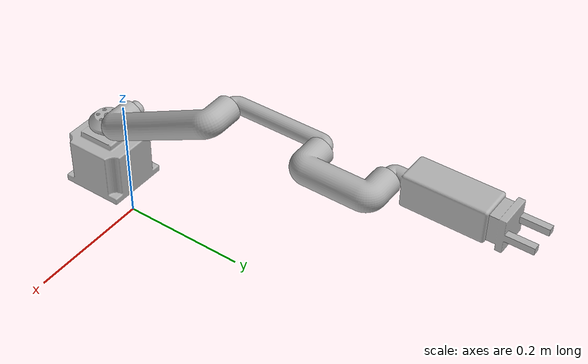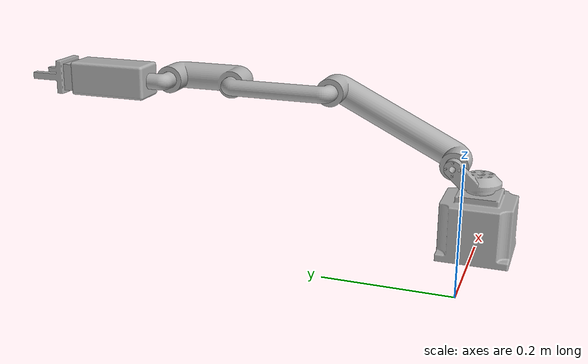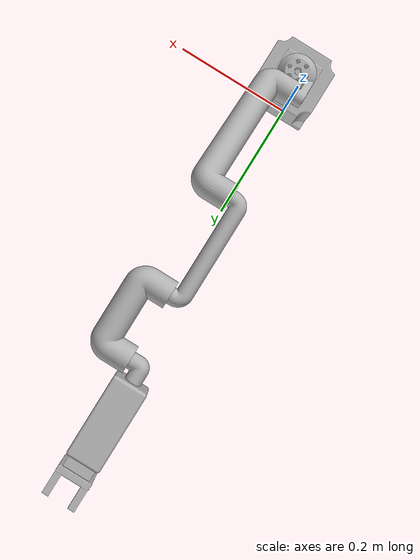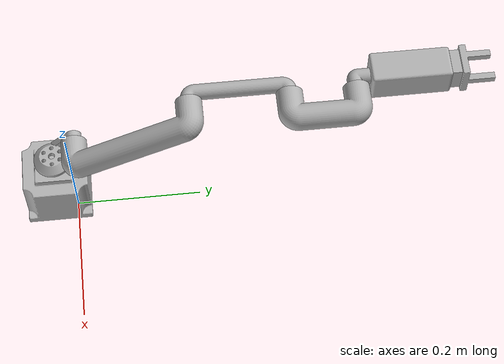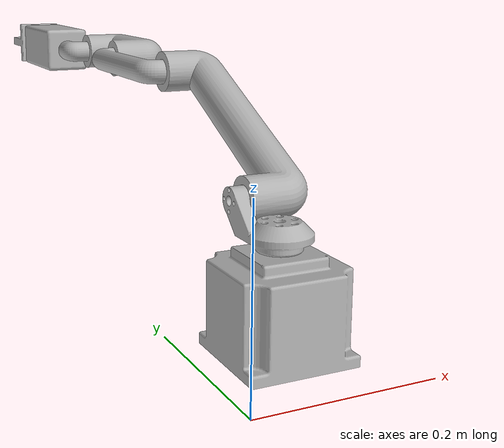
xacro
<?xml version="1.0" ?>
<robot name="Hexa" xmlns:xacro="http://www.ros.org/wiki/xacro">

<xacro:include filename="$(find Hexa_description)/urdf/materials.xacro" />
<xacro:include filename="$(find Hexa_description)/urdf/Hexa.trans" />
<xacro:include filename="$(find Hexa_description)/urdf/Hexa.gazebo" />
<link name="base_link">
  <inertial>
    <origin xyz="0.012186078410571176 -0.0224344536453961 0.11478353429233606" rpy="0 0 0"/>
    <mass value="5.2215512049750945"/>
    <inertia ixx="0.007305" iyy="0.007205" izz="0.008494" ixy="-0.0" iyz="0.0" ixz="-0.0"/>
  </inertial>
  <visual>
    <origin xyz="0 0 0" rpy="0 0 0"/>
    <geometry>
      <mesh filename="package://Hexa_description/meshes/base_link.stl" scale="0.001 0.001 0.001"/>
    </geometry>
    <material name="silver"/>
  </visual>
  <collision>
    <origin xyz="0 0 0" rpy="0 0 0"/>
    <geometry>
      <mesh filename="package://Hexa_description/meshes/base_link.stl" scale="0.001 0.001 0.001"/>
    </geometry>
  </collision>
</link>

<link name="Joint1_1">
  <inertial>
    <origin xyz="-0.017249498737064974 0.030459727623335396 -0.05028170355967204" rpy="0 0 0"/>
    <mass value="0.1462971408515163"/>
    <inertia ixx="6.4e-05" iyy="4.7e-05" izz="7.7e-05" ixy="1.5e-05" iyz="-1.7e-05" ixz="9e-06"/>
  </inertial>
  <visual>
    <origin xyz="-0.024372 0.044869 -0.228" rpy="0 0 0"/>
    <geometry>
      <mesh filename="package://Hexa_description/meshes/Joint1_1.stl" scale="0.001 0.001 0.001"/>
    </geometry>
    <material name="silver"/>
  </visual>
  <collision>
    <origin xyz="-0.024372 0.044869 -0.228" rpy="0 0 0"/>
    <geometry>
      <mesh filename="package://Hexa_description/meshes/Joint1_1.stl" scale="0.001 0.001 0.001"/>
    </geometry>
  </collision>
</link>

<link name="Joint2_1">
  <inertial>
    <origin xyz="0.038661884935205185 0.08964641623272433 0.04431136207566655" rpy="0 0 0"/>
    <mass value="0.5712992435269599"/>
    <inertia ixx="0.003173" iyy="0.000816" izz="0.002646" ixy="-0.0" iyz="-0.001197" ixz="0.0"/>
  </inertial>
  <visual>
    <origin xyz="0.004315 -0.013303 -0.196223" rpy="0 0 0"/>
    <geometry>
      <mesh filename="package://Hexa_description/meshes/Joint2_1.stl" scale="0.001 0.001 0.001"/>
    </geometry>
    <material name="silver"/>
  </visual>
  <collision>
    <origin xyz="0.004315 -0.013303 -0.196223" rpy="0 0 0"/>
    <geometry>
      <mesh filename="package://Hexa_description/meshes/Joint2_1.stl" scale="0.001 0.001 0.001"/>
    </geometry>
  </collision>
</link>

<link name="Joint3_1">
  <inertial>
    <origin xyz="0.02346583061234643 0.25889013648310066 -0.14411862858860852" rpy="0 0 0"/>
    <mass value="0.08484280964737087"/>
    <inertia ixx="0.00028" iyy="2.3e-05" izz="0.000293" ixy="0.0" iyz="0.0" ixz="0.0"/>
  </inertial>
  <visual>
    <origin xyz="0.033285 -0.008706 -0.428964" rpy="0 0 0"/>
    <geometry>
      <mesh filename="package://Hexa_description/meshes/Joint3_1.stl" scale="0.001 0.001 0.001"/>
    </geometry>
    <material name="silver"/>
  </visual>
  <collision>
    <origin xyz="0.033285 -0.008706 -0.428964" rpy="0 0 0"/>
    <geometry>
      <mesh filename="package://Hexa_description/meshes/Joint3_1.stl" scale="0.001 0.001 0.001"/>
    </geometry>
  </collision>
</link>

<link name="Joint4_1">
  <inertial>
    <origin xyz="0.010641595568822094 -0.3045958635168991 -0.1151546285886072" rpy="0 0 0"/>
    <mass value="0.36454317701258093"/>
    <inertia ixx="0.000697" iyy="0.000156" izz="0.000751" ixy="0.0" iyz="-0.0" ixz="0.0"/>
  </inertial>
  <visual>
    <origin xyz="-0.021 -0.697192 -0.4" rpy="0 0 0"/>
    <geometry>
      <mesh filename="package://Hexa_description/meshes/Joint4_1.stl" scale="0.001 0.001 0.001"/>
    </geometry>
    <material name="silver"/>
  </visual>
  <collision>
    <origin xyz="-0.021 -0.697192 -0.4" rpy="0 0 0"/>
    <geometry>
      <mesh filename="package://Hexa_description/meshes/Joint4_1.stl" scale="0.001 0.001 0.001"/>
    </geometry>
  </collision>
</link>

<link name="joint5_1">
  <inertial>
    <origin xyz="-0.017057148029853177 0.07459133668388296 3.7141139225260744e-07" rpy="0 0 0"/>
    <mass value="0.32403192309695955"/>
    <inertia ixx="0.0006" iyy="0.000202" izz="0.000602" ixy="1.1e-05" iyz="0.0" ixz="-0.0"/>
  </inertial>
  <visual>
    <origin xyz="0.002474 -0.442596 -0.284845" rpy="0 0 0"/>
    <geometry>
      <mesh filename="package://Hexa_description/meshes/joint5_1.stl" scale="0.001 0.001 0.001"/>
    </geometry>
    <material name="silver"/>
  </visual>
  <collision>
    <origin xyz="0.002474 -0.442596 -0.284845" rpy="0 0 0"/>
    <geometry>
      <mesh filename="package://Hexa_description/meshes/joint5_1.stl" scale="0.001 0.001 0.001"/>
    </geometry>
  </collision>
</link>

<link name="_Joint5_1_1">
  <inertial>
    <origin xyz="1.3098466321997959e-08 0.08926800270346136 3.7141139236362974e-07" rpy="0 0 0"/>
    <mass value="0.2540678574498573"/>
    <inertia ixx="0.000686" iyy="0.00011" izz="0.000695" ixy="-0.0" iyz="0.0" ixz="0.0"/>
  </inertial>
  <visual>
    <origin xyz="0.019974 -0.470596 -0.284845" rpy="0 0 0"/>
    <geometry>
      <mesh filename="package://Hexa_description/meshes/_Joint5_1_1.stl" scale="0.001 0.001 0.001"/>
    </geometry>
    <material name="silver"/>
  </visual>
  <collision>
    <origin xyz="0.019974 -0.470596 -0.284845" rpy="0 0 0"/>
    <geometry>
      <mesh filename="package://Hexa_description/meshes/_Joint5_1_1.stl" scale="0.001 0.001 0.001"/>
    </geometry>
  </collision>
</link>

<joint name="Revolución1" type="continuous">
  <origin xyz="0.024372 -0.044869 0.228" rpy="0 0 0"/>
  <parent link="base_link"/>
  <child link="Joint1_1"/>
  <axis xyz="0.0 0.0 1.0"/>
</joint>

<joint name="Revolución2" type="continuous">
  <origin xyz="-0.028687 0.058172 -0.031777" rpy="0 0 0"/>
  <parent link="Joint1_1"/>
  <child link="Joint2_1"/>
  <axis xyz="1.0 -0.0 0.0"/>
</joint>

<joint name="Revolución3" type="continuous">
  <origin xyz="-0.02897 -0.004597 0.232741" rpy="0 0 0"/>
  <parent link="Joint2_1"/>
  <child link="Joint3_1"/>
  <axis xyz="-1.0 0.0 -0.0"/>
</joint>

<joint name="Revolución4" type="continuous">
  <origin xyz="0.054285 0.688486 -0.028964" rpy="0 0 0"/>
  <parent link="Joint3_1"/>
  <child link="Joint4_1"/>
  <axis xyz="-1.0 0.0 -0.0"/>
</joint>

<joint name="Revolución5" type="continuous">
  <origin xyz="-0.023474 -0.254596 -0.115155" rpy="0 0 0"/>
  <parent link="Joint4_1"/>
  <child link="joint5_1"/>
  <axis xyz="1.0 -0.0 0.0"/>
</joint>

<joint name="Corredera6" type="prismatic">
  <origin xyz="-0.0175 0.028 0.0" rpy="0 0 0"/>
  <parent link="joint5_1"/>
  <child link="_Joint5_1_1"/>
  <axis xyz="0.0 1.0 0.0"/>
  <limit upper="0.0" lower="0.0" effort="100" velocity="100"/>
</joint>

</robot>

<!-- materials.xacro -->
<robot name="Hexa" xmlns:xacro="http://www.ros.org/wiki/xacro" >

<material name="silver">
  <color rgba="0.700 0.700 0.700 1.000"/>
</material>

</robot>

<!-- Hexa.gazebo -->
<robot name="Hexa" xmlns:xacro="http://www.ros.org/wiki/xacro" >

<xacro:property name="body_color" value="Gazebo/Silver" />

<gazebo>
  <plugin name="control" filename="libgazebo_ros_control.so"/>
</gazebo>
<gazebo reference="base_link">
  <material>${body_color}</material>
  <mu1>0.2</mu1>
  <mu2>0.2</mu2>
  <selfCollide>true</selfCollide>
  <gravity>true</gravity>
</gazebo>

<gazebo reference="Joint1_1">
  <material>${body_color}</material>
  <mu1>0.2</mu1>
  <mu2>0.2</mu2>
  <selfCollide>true</selfCollide>
</gazebo>

<gazebo reference="Joint2_1">
  <material>${body_color}</material>
  <mu1>0.2</mu1>
  <mu2>0.2</mu2>
  <selfCollide>true</selfCollide>
</gazebo>

<gazebo reference="Joint3_1">
  <material>${body_color}</material>
  <mu1>0.2</mu1>
  <mu2>0.2</mu2>
  <selfCollide>true</selfCollide>
</gazebo>

<gazebo reference="Joint4_1">
  <material>${body_color}</material>
  <mu1>0.2</mu1>
  <mu2>0.2</mu2>
  <selfCollide>true</selfCollide>
</gazebo>

<gazebo reference="joint5_1">
  <material>${body_color}</material>
  <mu1>0.2</mu1>
  <mu2>0.2</mu2>
  <selfCollide>true</selfCollide>
</gazebo>

<gazebo reference="_Joint5_1_1">
  <material>${body_color}</material>
  <mu1>0.2</mu1>
  <mu2>0.2</mu2>
  <selfCollide>true</selfCollide>
</gazebo>

</robot>
